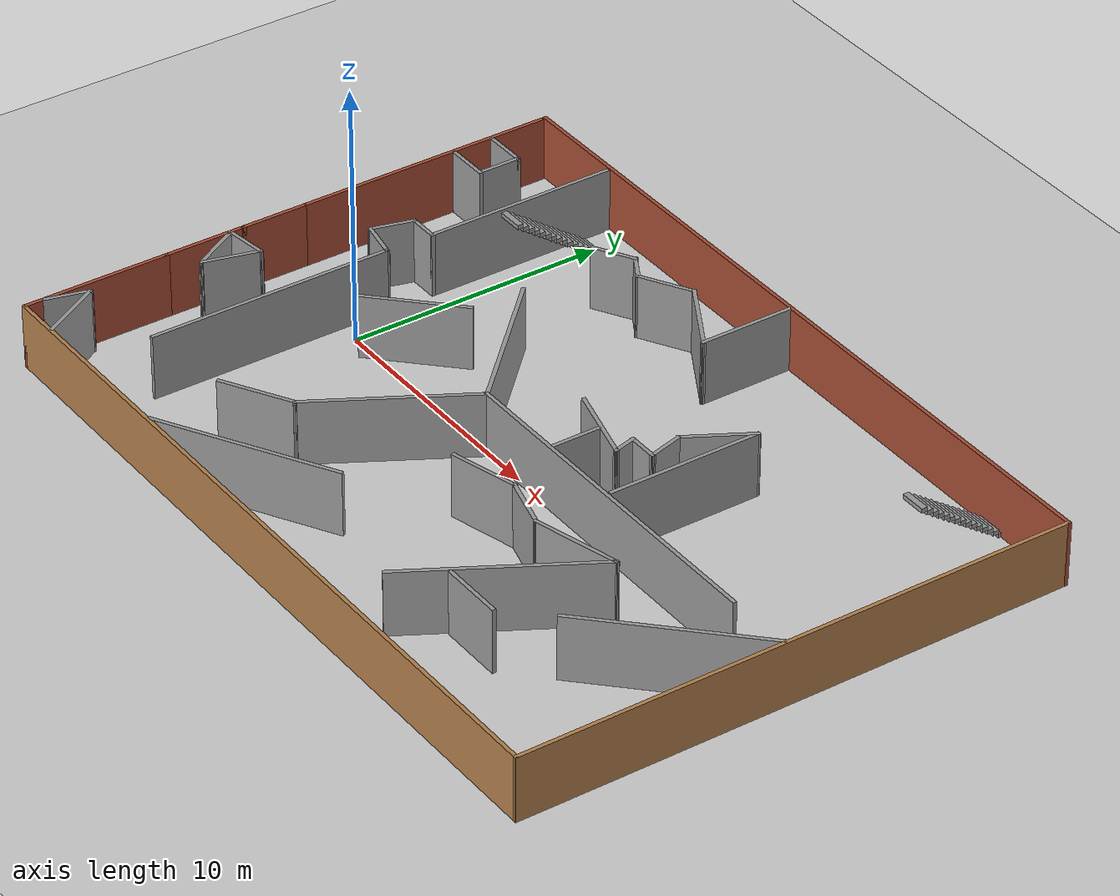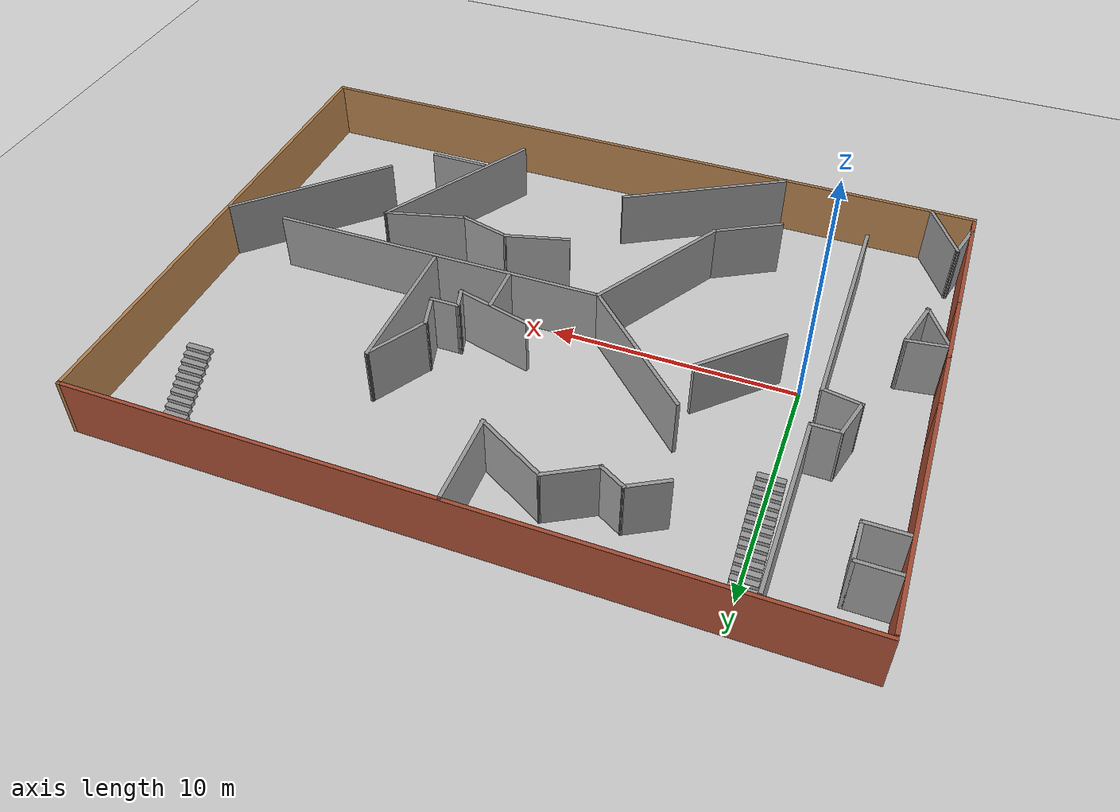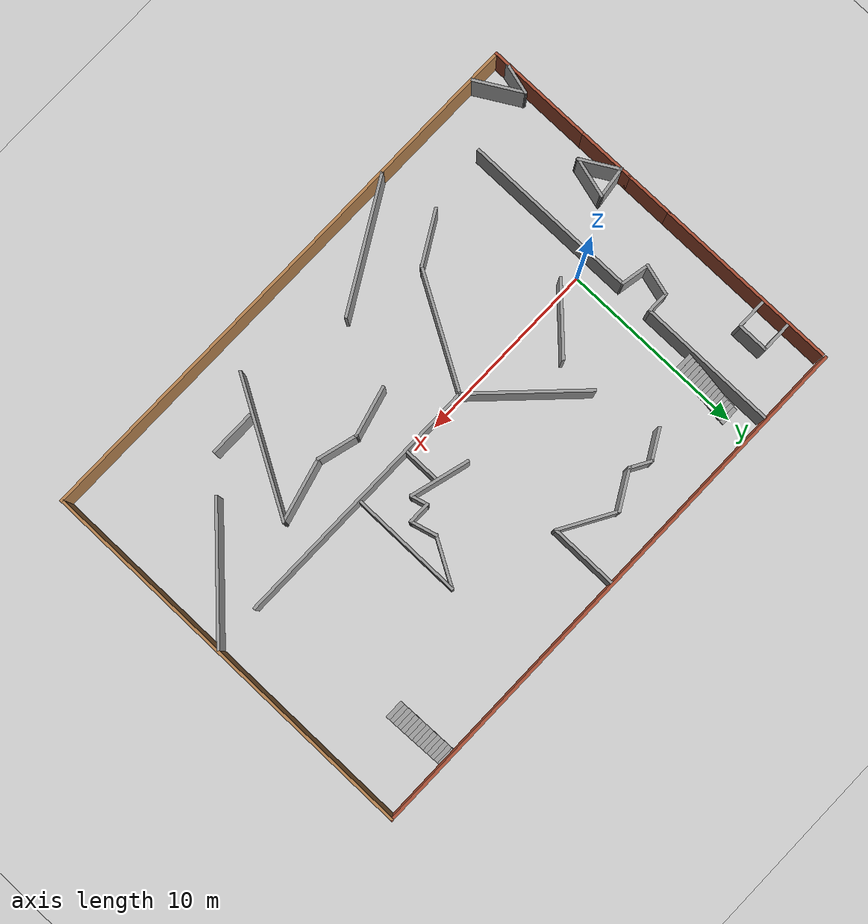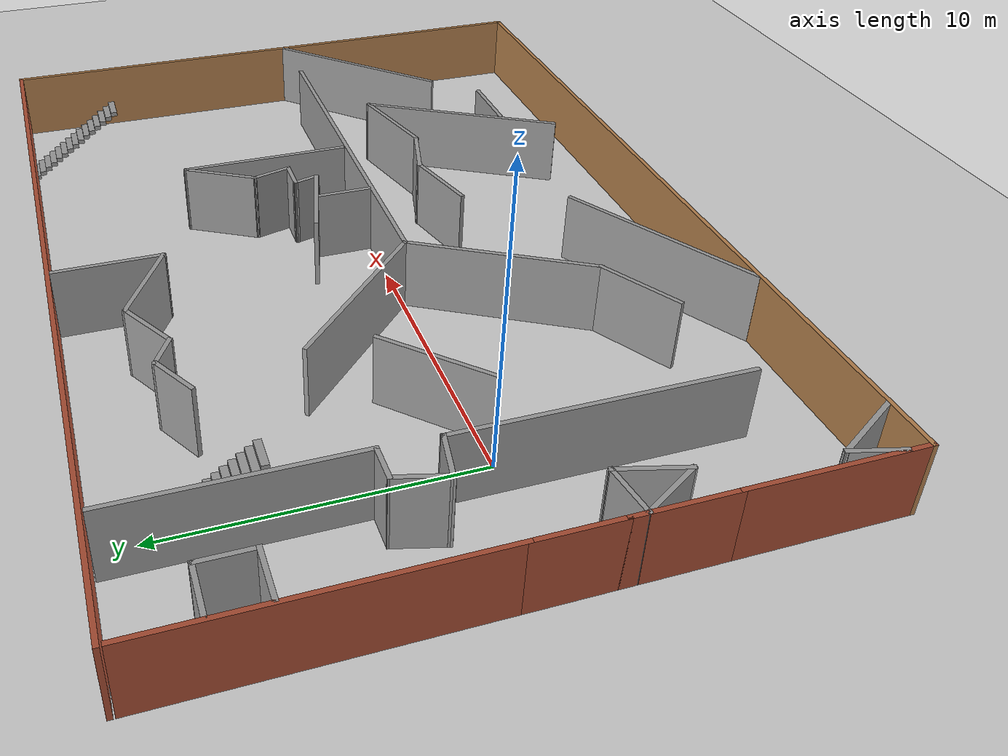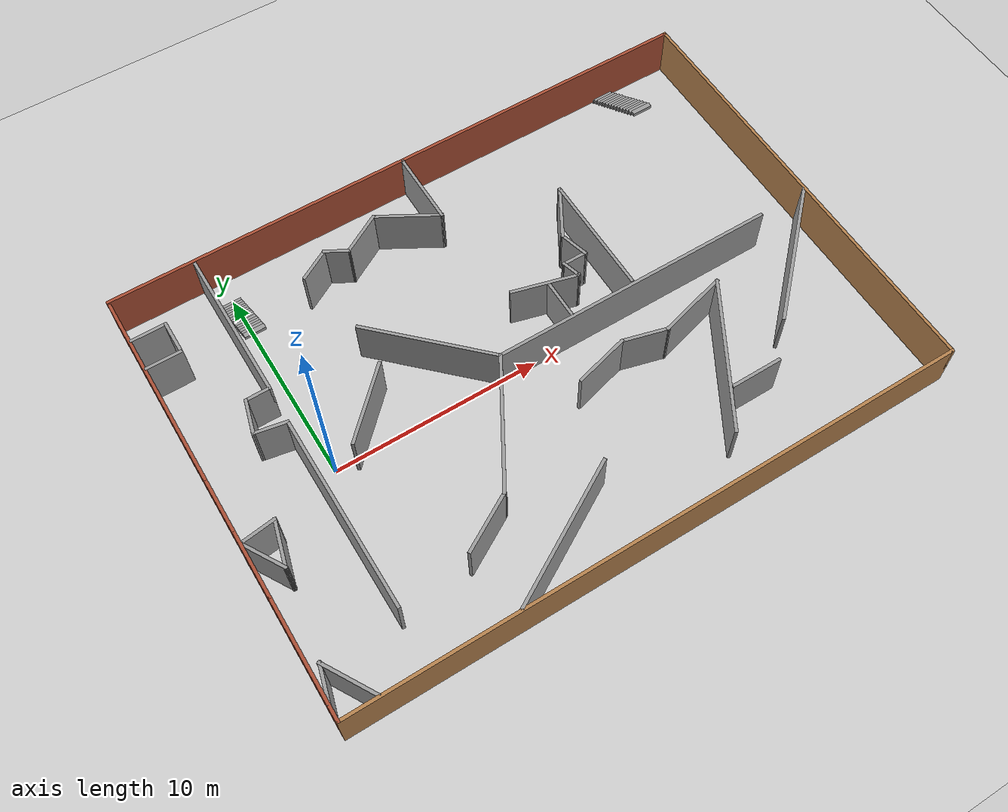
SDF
<sdf version="1.6">
 <world name="default">
  <light name="sun" type="directional">
   <pose>0 0 10 0 -0 0</pose>
   <diffuse>0.8 0.8 0.8 1</diffuse>
   <specular>0.2 0.2 0.2 1</specular>
   <attenuation>
    <range>1000</range>
    <constant>0.9</constant>
    <linear>0.01</linear>
    <quadratic>0.001</quadratic>
   </attenuation>
   <direction>-0.5 0.1 -0.9</direction>
   <spot><inner_angle>0</inner_angle><outer_angle>0</outer_angle><falloff>0</falloff></spot>
  </light>
  <model name="ground_plane">
   <static>1</static>
   <link name="link">
    <collision name="collision">
     <geometry><plane><normal>0 0 1</normal><size>100 100</size></plane></geometry>
     <surface>
      <contact><collide_bitmask>65535</collide_bitmask></contact>
      <friction><ode><mu>100</mu><mu2>50</mu2></ode></friction>
     </surface>
    </collision>
    <visual name="visual">
     <cast_shadows>0</cast_shadows>
     <geometry><plane><normal>0 0 1</normal><size>100 100</size></plane></geometry>
     <material>
      <script><uri>file://media/materials/scripts/gazebo.material</uri><name>Gazebo/Grey</name></script>
     </material>
    </visual>
   </link>
  </model>
  <gravity>0 0 -9.8</gravity>
  <magnetic_field>6e-06 2.3e-05 -4.2e-05</magnetic_field>
  <atmosphere type="adiabatic"/>
  <physics type="ode">
   <max_step_size>0.001</max_step_size>
   <real_time_factor>1</real_time_factor>
   <real_time_update_rate>1000</real_time_update_rate>
  </physics>
  <scene><ambient>0.4 0.4 0.4 1</ambient><background>0.7 0.7 0.7 1</background><shadows>1</shadows></scene>
  <spherical_coordinates>
   <surface_model>EARTH_WGS84</surface_model>
   <latitude_deg>0</latitude_deg>
   <longitude_deg>0</longitude_deg>
   <elevation>0</elevation>
   <heading_deg>0</heading_deg>
  </spherical_coordinates>
  <model name="demo">
   <pose>9.877 0.597931 0 0 -0 0</pose>
   <link name="Stairs_0">
    <visual name="Stairs_0_Visual_0">
     <pose>11.1017 10.6143 0.083333 0 -0 0</pose>
     <geometry><box><size>1 0.233333 0.166667</size></box></geometry>
     <material>
      <script><uri>file://media/materials/scripts/gazebo.material</uri><name>Gazebo/Grey</name></script>
      <ambient>1 1 1 1</ambient>
     </material>
     <meta><layer>0</layer></meta>
    </visual>
    <collision name="Stairs_0_Collision_0">
     <geometry><box><size>1 0.233333 0.166667</size></box></geometry>
     <pose>11.1017 10.6143 0.083333 0 -0 0</pose>
    </collision>
    <visual name="Stairs_0_Visual_1">
     <pose>11.1017 10.381 0.25 0 -0 0</pose>
     <geometry><box><size>1 0.233333 0.166667</size></box></geometry>
     <material>
      <script><uri>file://media/materials/scripts/gazebo.material</uri><name>Gazebo/Grey</name></script>
      <ambient>1 1 1 1</ambient>
     </material>
     <meta><layer>0</layer></meta>
    </visual>
    <collision name="Stairs_0_Collision_1">
     <geometry><box><size>1 0.233333 0.166667</size></box></geometry>
     <pose>11.1017 10.381 0.25 0 -0 0</pose>
    </collision>
    <visual name="Stairs_0_Visual_2">
     <pose>11.1017 10.1476 0.416667 0 -0 0</pose>
     <geometry><box><size>1 0.233333 0.166667</size></box></geometry>
     <material>
      <script><uri>file://media/materials/scripts/gazebo.material</uri><name>Gazebo/Grey</name></script>
      <ambient>1 1 1 1</ambient>
     </material>
     <meta><layer>0</layer></meta>
    </visual>
    <collision name="Stairs_0_Collision_2">
     <geometry><box><size>1 0.233333 0.166667</size></box></geometry>
     <pose>11.1017 10.1476 0.416667 0 -0 0</pose>
    </collision>
    <visual name="Stairs_0_Visual_3">
     <pose>11.1017 9.91429 0.583333 0 -0 0</pose>
     <geometry><box><size>1 0.233333 0.166667</size></box></geometry>
     <material>
      <script><uri>file://media/materials/scripts/gazebo.material</uri><name>Gazebo/Grey</name></script>
      <ambient>1 1 1 1</ambient>
     </material>
     <meta><layer>0</layer></meta>
    </visual>
    <collision name="Stairs_0_Collision_3">
     <geometry><box><size>1 0.233333 0.166667</size></box></geometry>
     <pose>11.1017 9.91429 0.583333 0 -0 0</pose>
    </collision>
    <visual name="Stairs_0_Visual_4">
     <pose>11.1017 9.68095 0.75 0 -0 0</pose>
     <geometry><box><size>1 0.233333 0.166667</size></box></geometry>
     <material>
      <script><uri>file://media/materials/scripts/gazebo.material</uri><name>Gazebo/Grey</name></script>
      <ambient>1 1 1 1</ambient>
     </material>
     <meta><layer>0</layer></meta>
    </visual>
    <collision name="Stairs_0_Collision_4">
     <geometry><box><size>1 0.233333 0.166667</size></box></geometry>
     <pose>11.1017 9.68095 0.75 0 -0 0</pose>
    </collision>
    <visual name="Stairs_0_Visual_5">
     <pose>11.1017 9.44762 0.916667 0 -0 0</pose>
     <geometry><box><size>1 0.233333 0.166667</size></box></geometry>
     <material>
      <script><uri>file://media/materials/scripts/gazebo.material</uri><name>Gazebo/Grey</name></script>
      <ambient>1 1 1 1</ambient>
     </material>
     <meta><layer>0</layer></meta>
    </visual>
    <collision name="Stairs_0_Collision_5">
     <geometry><box><size>1 0.233333 0.166667</size></box></geometry>
     <pose>11.1017 9.44762 0.916667 0 -0 0</pose>
    </collision>
    <visual name="Stairs_0_Visual_6">
     <pose>11.1017 9.21429 1.08333 0 -0 0</pose>
     <geometry><box><size>1 0.233333 0.166667</size></box></geometry>
     <material>
      <script><uri>file://media/materials/scripts/gazebo.material</uri><name>Gazebo/Grey</name></script>
      <ambient>1 1 1 1</ambient>
     </material>
     <meta><layer>0</layer></meta>
    </visual>
    <collision name="Stairs_0_Collision_6">
     <geometry><box><size>1 0.233333 0.166667</size></box></geometry>
     <pose>11.1017 9.21429 1.08333 0 -0 0</pose>
    </collision>
    <visual name="Stairs_0_Visual_7">
     <pose>11.1017 8.98095 1.25 0 -0 0</pose>
     <geometry><box><size>1 0.233333 0.166667</size></box></geometry>
     <material>
      <script><uri>file://media/materials/scripts/gazebo.material</uri><name>Gazebo/Grey</name></script>
      <ambient>1 1 1 1</ambient>
     </material>
     <meta><layer>0</layer></meta>
    </visual>
    <collision name="Stairs_0_Collision_7">
     <geometry><box><size>1 0.233333 0.166667</size></box></geometry>
     <pose>11.1017 8.98095 1.25 0 -0 0</pose>
    </collision>
    <visual name="Stairs_0_Visual_8">
     <pose>11.1017 8.74762 1.41667 0 -0 0</pose>
     <geometry><box><size>1 0.233333 0.166667</size></box></geometry>
     <material>
      <script><uri>file://media/materials/scripts/gazebo.material</uri><name>Gazebo/Grey</name></script>
      <ambient>1 1 1 1</ambient>
     </material>
     <meta><layer>0</layer></meta>
    </visual>
    <collision name="Stairs_0_Collision_8">
     <geometry><box><size>1 0.233333 0.166667</size></box></geometry>
     <pose>11.1017 8.74762 1.41667 0 -0 0</pose>
    </collision>
    <visual name="Stairs_0_Visual_9">
     <pose>11.1017 8.51429 1.58333 0 -0 0</pose>
     <geometry><box><size>1 0.233333 0.166667</size></box></geometry>
     <material>
      <script><uri>file://media/materials/scripts/gazebo.material</uri><name>Gazebo/Grey</name></script>
      <ambient>1 1 1 1</ambient>
     </material>
     <meta><layer>0</layer></meta>
    </visual>
    <collision name="Stairs_0_Collision_9">
     <geometry><box><size>1 0.233333 0.166667</size></box></geometry>
     <pose>11.1017 8.51429 1.58333 0 -0 0</pose>
    </collision>
    <visual name="Stairs_0_Visual_10">
     <pose>11.1017 8.28095 1.75 0 -0 0</pose>
     <geometry><box><size>1 0.233333 0.166667</size></box></geometry>
     <material>
      <script><uri>file://media/materials/scripts/gazebo.material</uri><name>Gazebo/Grey</name></script>
      <ambient>1 1 1 1</ambient>
     </material>
     <meta><layer>0</layer></meta>
    </visual>
    <collision name="Stairs_0_Collision_10">
     <geometry><box><size>1 0.233333 0.166667</size></box></geometry>
     <pose>11.1017 8.28095 1.75 0 -0 0</pose>
    </collision>
    <visual name="Stairs_0_Visual_11">
     <pose>11.1017 8.04762 1.91667 0 -0 0</pose>
     <geometry><box><size>1 0.233333 0.166667</size></box></geometry>
     <material>
      <script><uri>file://media/materials/scripts/gazebo.material</uri><name>Gazebo/Grey</name></script>
      <ambient>1 1 1 1</ambient>
     </material>
     <meta><layer>0</layer></meta>
    </visual>
    <collision name="Stairs_0_Collision_11">
     <geometry><box><size>1 0.233333 0.166667</size></box></geometry>
     <pose>11.1017 8.04762 1.91667 0 -0 0</pose>
    </collision>
    <visual name="Stairs_0_Visual_12">
     <pose>11.1017 7.81429 2.08333 0 -0 0</pose>
     <geometry><box><size>1 0.233333 0.166667</size></box></geometry>
     <material>
      <script><uri>file://media/materials/scripts/gazebo.material</uri><name>Gazebo/Grey</name></script>
      <ambient>1 1 1 1</ambient>
     </material>
     <meta><layer>0</layer></meta>
    </visual>
    <collision name="Stairs_0_Collision_12">
     <geometry><box><size>1 0.233333 0.166667</size></box></geometry>
     <pose>11.1017 7.81429 2.08333 0 -0 0</pose>
    </collision>
    <visual name="Stairs_0_Visual_13">
     <pose>11.1017 7.58095 2.25 0 -0 0</pose>
     <geometry><box><size>1 0.233333 0.166667</size></box></geometry>
     <material>
      <script><uri>file://media/materials/scripts/gazebo.material</uri><name>Gazebo/Grey</name></script>
      <ambient>1 1 1 1</ambient>
     </material>
     <meta><layer>0</layer></meta>
    </visual>
    <collision name="Stairs_0_Collision_13">
     <geometry><box><size>1 0.233333 0.166667</size></box></geometry>
     <pose>11.1017 7.58095 2.25 0 -0 0</pose>
    </collision>
    <visual name="Stairs_0_Visual_14">
     <pose>11.1017 7.34762 2.41667 0 -0 0</pose>
     <geometry><box><size>1 0.233333 0.166667</size></box></geometry>
     <material>
      <script><uri>file://media/materials/scripts/gazebo.material</uri><name>Gazebo/Grey</name></script>
      <ambient>1 1 1 1</ambient>
     </material>
     <meta><layer>0</layer></meta>
    </visual>
    <collision name="Stairs_0_Collision_14">
     <geometry><box><size>1 0.233333 0.166667</size></box></geometry>
     <pose>11.1017 7.34762 2.41667 0 -0 0</pose>
    </collision>
   </link>
   <link name="Stairs_1">
    <visual name="Stairs_1_Visual_0">
     <pose>-10.0119 9.27289 0.083333 0 -0 0</pose>
     <geometry><box><size>1 0.233333 0.166667</size></box></geometry>
     <material>
      <script><uri>file://media/materials/scripts/gazebo.material</uri><name>Gazebo/Grey</name></script>
      <ambient>1 1 1 1</ambient>
     </material>
     <meta><layer>0</layer></meta>
    </visual>
    <collision name="Stairs_1_Collision_0">
     <geometry><box><size>1 0.233333 0.166667</size></box></geometry>
     <pose>-10.0119 9.27289 0.083333 0 -0 0</pose>
    </collision>
    <visual name="Stairs_1_Visual_1">
     <pose>-10.0119 9.03956 0.25 0 -0 0</pose>
     <geometry><box><size>1 0.233333 0.166667</size></box></geometry>
     <material>
      <script><uri>file://media/materials/scripts/gazebo.material</uri><name>Gazebo/Grey</name></script>
      <ambient>1 1 1 1</ambient>
     </material>
     <meta><layer>0</layer></meta>
    </visual>
    <collision name="Stairs_1_Collision_1">
     <geometry><box><size>1 0.233333 0.166667</size></box></geometry>
     <pose>-10.0119 9.03956 0.25 0 -0 0</pose>
    </collision>
    <visual name="Stairs_1_Visual_2">
     <pose>-10.0119 8.80623 0.416667 0 -0 0</pose>
     <geometry><box><size>1 0.233333 0.166667</size></box></geometry>
     <material>
      <script><uri>file://media/materials/scripts/gazebo.material</uri><name>Gazebo/Grey</name></script>
      <ambient>1 1 1 1</ambient>
     </material>
     <meta><layer>0</layer></meta>
    </visual>
    <collision name="Stairs_1_Collision_2">
     <geometry><box><size>1 0.233333 0.166667</size></box></geometry>
     <pose>-10.0119 8.80623 0.416667 0 -0 0</pose>
    </collision>
    <visual name="Stairs_1_Visual_3">
     <pose>-10.0119 8.57289 0.583333 0 -0 0</pose>
     <geometry><box><size>1 0.233333 0.166667</size></box></geometry>
     <material>
      <script><uri>file://media/materials/scripts/gazebo.material</uri><name>Gazebo/Grey</name></script>
      <ambient>1 1 1 1</ambient>
     </material>
     <meta><layer>0</layer></meta>
    </visual>
    <collision name="Stairs_1_Collision_3">
     <geometry><box><size>1 0.233333 0.166667</size></box></geometry>
     <pose>-10.0119 8.57289 0.583333 0 -0 0</pose>
    </collision>
    <visual name="Stairs_1_Visual_4">
     <pose>-10.0119 8.33956 0.75 0 -0 0</pose>
     <geometry><box><size>1 0.233333 0.166667</size></box></geometry>
     <material>
      <script><uri>file://media/materials/scripts/gazebo.material</uri><name>Gazebo/Grey</name></script>
      <ambient>1 1 1 1</ambient>
     </material>
     <meta><layer>0</layer></meta>
    </visual>
    <collision name="Stairs_1_Collision_4">
     <geometry><box><size>1 0.233333 0.166667</size></box></geometry>
     <pose>-10.0119 8.33956 0.75 0 -0 0</pose>
    </collision>
    <visual name="Stairs_1_Visual_5">
     <pose>-10.0119 8.10623 0.916667 0 -0 0</pose>
     <geometry><box><size>1 0.233333 0.166667</size></box></geometry>
     <material>
      <script><uri>file://media/materials/scripts/gazebo.material</uri><name>Gazebo/Grey</name></script>
      <ambient>1 1 1 1</ambient>
     </material>
     <meta><layer>0</layer></meta>
    </visual>
    <collision name="Stairs_1_Collision_5">
     <geometry><box><size>1 0.233333 0.166667</size></box></geometry>
     <pose>-10.0119 8.10623 0.916667 0 -0 0</pose>
    </collision>
    <visual name="Stairs_1_Visual_6">
     <pose>-10.0119 7.87289 1.08333 0 -0 0</pose>
     <geometry><box><size>1 0.233333 0.166667</size></box></geometry>
     <material>
      <script><uri>file://media/materials/scripts/gazebo.material</uri><name>Gazebo/Grey</name></script>
      <ambient>1 1 1 1</ambient>
     </material>
     <meta><layer>0</layer></meta>
    </visual>
    <collision name="Stairs_1_Collision_6">
     <geometry><box><size>1 0.233333 0.166667</size></box></geometry>
     <pose>-10.0119 7.87289 1.08333 0 -0 0</pose>
    </collision>
    <visual name="Stairs_1_Visual_7">
     <pose>-10.0119 7.63956 1.25 0 -0 0</pose>
     <geometry><box><size>1 0.233333 0.166667</size></box></geometry>
     <material>
      <script><uri>file://media/materials/scripts/gazebo.material</uri><name>Gazebo/Grey</name></script>
      <ambient>1 1 1 1</ambient>
     </material>
     <meta><layer>0</layer></meta>
    </visual>
    <collision name="Stairs_1_Collision_7">
     <geometry><box><size>1 0.233333 0.166667</size></box></geometry>
     <pose>-10.0119 7.63956 1.25 0 -0 0</pose>
    </collision>
    <visual name="Stairs_1_Visual_8">
     <pose>-10.0119 7.40623 1.41667 0 -0 0</pose>
     <geometry><box><size>1 0.233333 0.166667</size></box></geometry>
     <material>
      <script><uri>file://media/materials/scripts/gazebo.material</uri><name>Gazebo/Grey</name></script>
      <ambient>1 1 1 1</ambient>
     </material>
     <meta><layer>0</layer></meta>
    </visual>
    <collision name="Stairs_1_Collision_8">
     <geometry><box><size>1 0.233333 0.166667</size></box></geometry>
     <pose>-10.0119 7.40623 1.41667 0 -0 0</pose>
    </collision>
    <visual name="Stairs_1_Visual_9">
     <pose>-10.0119 7.17289 1.58333 0 -0 0</pose>
     <geometry><box><size>1 0.233333 0.166667</size></box></geometry>
     <material>
      <script><uri>file://media/materials/scripts/gazebo.material</uri><name>Gazebo/Grey</name></script>
      <ambient>1 1 1 1</ambient>
     </material>
     <meta><layer>0</layer></meta>
    </visual>
    <collision name="Stairs_1_Collision_9">
     <geometry><box><size>1 0.233333 0.166667</size></box></geometry>
     <pose>-10.0119 7.17289 1.58333 0 -0 0</pose>
    </collision>
    <visual name="Stairs_1_Visual_10">
     <pose>-10.0119 6.93956 1.75 0 -0 0</pose>
     <geometry><box><size>1 0.233333 0.166667</size></box></geometry>
     <material>
      <script><uri>file://media/materials/scripts/gazebo.material</uri><name>Gazebo/Grey</name></script>
      <ambient>1 1 1 1</ambient>
     </material>
     <meta><layer>0</layer></meta>
    </visual>
    <collision name="Stairs_1_Collision_10">
     <geometry><box><size>1 0.233333 0.166667</size></box></geometry>
     <pose>-10.0119 6.93956 1.75 0 -0 0</pose>
    </collision>
    <visual name="Stairs_1_Visual_11">
     <pose>-10.0119 6.70623 1.91667 0 -0 0</pose>
     <geometry><box><size>1 0.233333 0.166667</size></box></geometry>
     <material>
      <script><uri>file://media/materials/scripts/gazebo.material</uri><name>Gazebo/Grey</name></script>
      <ambient>1 1 1 1</ambient>
     </material>
     <meta><layer>0</layer></meta>
    </visual>
    <collision name="Stairs_1_Collision_11">
     <geometry><box><size>1 0.233333 0.166667</size></box></geometry>
     <pose>-10.0119 6.70623 1.91667 0 -0 0</pose>
    </collision>
    <visual name="Stairs_1_Visual_12">
     <pose>-10.0119 6.47289 2.08333 0 -0 0</pose>
     <geometry><box><size>1 0.233333 0.166667</size></box></geometry>
     <material>
      <script><uri>file://media/materials/scripts/gazebo.material</uri><name>Gazebo/Grey</name></script>
      <ambient>1 1 1 1</ambient>
     </material>
     <meta><layer>0</layer></meta>
    </visual>
    <collision name="Stairs_1_Collision_12">
     <geometry><box><size>1 0.233333 0.166667</size></box></geometry>
     <pose>-10.0119 6.47289 2.08333 0 -0 0</pose>
    </collision>
    <visual name="Stairs_1_Visual_13">
     <pose>-10.0119 6.23956 2.25 0 -0 0</pose>
     <geometry><box><size>1 0.233333 0.166667</size></box></geometry>
     <material>
      <script><uri>file://media/materials/scripts/gazebo.material</uri><name>Gazebo/Grey</name></script>
      <ambient>1 1 1 1</ambient>
     </material>
     <meta><layer>0</layer></meta>
    </visual>
    <collision name="Stairs_1_Collision_13">
     <geometry><box><size>1 0.233333 0.166667</size></box></geometry>
     <pose>-10.0119 6.23956 2.25 0 -0 0</pose>
    </collision>
    <visual name="Stairs_1_Visual_14">
     <pose>-10.0119 6.00623 2.41667 0 -0 0</pose>
     <geometry><box><size>1 0.233333 0.166667</size></box></geometry>
     <material>
      <script><uri>file://media/materials/scripts/gazebo.material</uri><name>Gazebo/Grey</name></script>
      <ambient>1 1 1 1</ambient>
     </material>
     <meta><layer>0</layer></meta>
    </visual>
    <collision name="Stairs_1_Collision_14">
     <geometry><box><size>1 0.233333 0.166667</size></box></geometry>
     <pose>-10.0119 6.00623 2.41667 0 -0 0</pose>
    </collision>
   </link>
   <link name="Wall_0">
    <collision name="Wall_0_Collision">
     <geometry><box><size>3.25 0.15 2.5</size></box></geometry>
     <pose>0 0 1.25 0 -0 0</pose>
    </collision>
    <visual name="Wall_0_Visual">
     <pose>0 0 1.25 0 -0 0</pose>
     <geometry><box><size>3.25 0.15 2.5</size></box></geometry>
     <material>
      <script><uri>file://media/materials/scripts/gazebo.material</uri><name>Gazebo/Bricks</name></script>
      <ambient>1 1 1 1</ambient>
     </material>
     <meta><layer>0</layer></meta>
    </visual>
    <pose>-14.7939 -3.525 0 0 -0 -1.5708</pose>
   </link>
   <link name="Wall_10">
    <collision name="Wall_10_Collision">
     <geometry><box><size>29.75 0.15 2.5</size></box></geometry>
     <pose>0 0 1.25 0 -0 0</pose>
    </collision>
    <visual name="Wall_10_Visual">
     <pose>0 0 1.25 0 -0 0</pose>
     <geometry><box><size>29.75 0.15 2.5</size></box></geometry>
     <material>
      <script><uri>file://media/materials/scripts/gazebo.material</uri><name>Gazebo/Bricks</name></script>
      <ambient>1 1 1 1</ambient>
     </material>
     <meta><layer>0</layer></meta>
    </visual>
    <pose>0.006073 10.675 0 0 -0 3.14159</pose>
   </link>
   <link name="Wall_12">
    <collision name="Wall_12_Collision">
     <geometry><box><size>7.5 0.15 2.5</size></box></geometry>
     <pose>0 0 1.25 0 -0 0</pose>
    </collision>
    <visual name="Wall_12_Visual">
     <pose>0 0 1.25 0 -0 0</pose>
     <geometry><box><size>7.5 0.15 2.5</size></box></geometry>
     <material>
      <script><uri>file://media/materials/scripts/gazebo.material</uri><name>Gazebo/Grey</name></script>
      <ambient>1 1 1 1</ambient>
     </material>
     <meta><layer>0</layer></meta>
    </visual>
    <pose>-10.7178 6.81263 0 0 -0 -1.5708</pose>
   </link>
   <link name="Wall_19">
    <collision name="Wall_19_Collision">
     <geometry><box><size>6.5 0.15 2.5</size></box></geometry>
     <pose>0 0 1.25 0 -0 0</pose>
    </collision>
    <visual name="Wall_19_Visual">
     <pose>0 0 1.25 0 -0 0</pose>
     <geometry><box><size>6.5 0.15 2.5</size></box></geometry>
     <material>
      <script><uri>file://media/materials/scripts/gazebo.material</uri><name>Gazebo/Grey</name></script>
      <ambient>1 1 1 1</ambient>
     </material>
     <meta><layer>0</layer></meta>
    </visual>
    <pose>-3.25558 -3.40143 0 0 -0 1.0472</pose>
   </link>
   <link name="Wall_2">
    <collision name="Wall_2_Collision">
     <geometry><box><size>2.75 0.15 2.5</size></box></geometry>
     <pose>0 0 1.25 0 -0 0</pose>
    </collision>
    <visual name="Wall_2_Visual">
     <pose>0 0 1.25 0 -0 0</pose>
     <geometry><box><size>2.75 0.15 2.5</size></box></geometry>
     <material>
      <script><uri>file://media/materials/scripts/gazebo.material</uri><name>Gazebo/Bricks</name></script>
      <ambient>1 1 1 1</ambient>
     </material>
     <meta><layer>0</layer></meta>
    </visual>
    <pose>-14.7939 -0.675 0 0 -0 1.5708</pose>
   </link>
   <link name="Wall_20">
    <collision name="Wall_20_Collision">
     <geometry><box><size>6.5 0.15 2.5</size></box></geometry>
     <pose>0 0 1.25 0 -0 0</pose>
    </collision>
    <visual name="Wall_20_Visual">
     <pose>0 0 1.25 0 -0 0</pose>
     <geometry><box><size>6.5 0.15 2.5</size></box></geometry>
     <material>
      <script><uri>file://media/materials/scripts/gazebo.material</uri><name>Gazebo/Grey</name></script>
      <ambient>1 1 1 1</ambient>
     </material>
     <meta><layer>0</layer></meta>
    </visual>
    <pose>-3.91314 1.59326 0 0 -0 2.35619</pose>
   </link>
   <link name="Wall_27">
    <collision name="Wall_27_Collision">
     <geometry><box><size>4 0.15 2.5</size></box></geometry>
     <pose>0 0 1.25 0 -0 0</pose>
    </collision>
    <visual name="Wall_27_Visual">
     <pose>0 0 1.25 0 -0 0</pose>
     <geometry><box><size>4 0.15 2.5</size></box></geometry>
     <material>
      <script><uri>file://media/materials/scripts/gazebo.material</uri><name>Gazebo/Grey</name></script>
      <ambient>1 1 1 1</ambient>
     </material>
     <meta><layer>0</layer></meta>
    </visual>
    <pose>-7.58743 0.389492 0 0 -0 -2.35619</pose>
   </link>
   <link name="Wall_29">
    <collision name="Wall_29_Collision">
     <geometry><box><size>14 0.15 2.5</size></box></geometry>
     <pose>0 0 1.25 0 -0 0</pose>
    </collision>
    <visual name="Wall_29_Visual">
     <pose>0 0 1.25 0 -0 0</pose>
     <geometry><box><size>14 0.15 2.5</size></box></geometry>
     <material>
      <script><uri>file://media/materials/scripts/gazebo.material</uri><name>Gazebo/Grey</name></script>
      <ambient>1 1 1 1</ambient>
     </material>
     <meta><layer>0</layer></meta>
    </visual>
    <pose>5.25692 -0.651799 0 0 -0 0</pose>
   </link>
   <link name="Wall_32">
    <collision name="Wall_32_Collision">
     <geometry><box><size>7.25 0.15 2.5</size></box></geometry>
     <pose>0 0 1.25 0 -0 0</pose>
    </collision>
    <visual name="Wall_32_Visual">
     <pose>0 0 1.25 0 -0 0</pose>
     <geometry><box><size>7.25 0.15 2.5</size></box></geometry>
     <material>
      <script><uri>file://media/materials/scripts/gazebo.material</uri><name>Gazebo/Grey</name></script>
      <ambient>1 1 1 1</ambient>
     </material>
     <meta><layer>0</layer></meta>
    </visual>
    <pose>-3.70561 -8.84143 0 0 -0 0.523599</pose>
   </link>
   <link name="Wall_34">
    <collision name="Wall_34_Collision">
     <geometry><box><size>2.75 0.15 2.5</size></box></geometry>
     <pose>0 0 1.25 0 -0 0</pose>
    </collision>
    <visual name="Wall_34_Visual">
     <pose>0 0 1.25 0 -0 0</pose>
     <geometry><box><size>2.75 0.15 2.5</size></box></geometry>
     <material>
      <script><uri>file://media/materials/scripts/gazebo.material</uri><name>Gazebo/Grey</name></script>
      <ambient>1 1 1 1</ambient>
     </material>
     <meta><layer>0</layer></meta>
    </visual>
    <pose>1.85905 -3.14273 0 0 -0 0.261799</pose>
   </link>
   <link name="Wall_35">
    <collision name="Wall_35_Collision">
     <geometry><box><size>2.25 0.15 2.5</size></box></geometry>
     <pose>0 0 1.25 0 -0 0</pose>
    </collision>
    <visual name="Wall_35_Visual">
     <pose>0 0 1.25 0 -0 0</pose>
     <geometry><box><size>2.25 0.15 2.5</size></box></geometry>
     <material>
      <script><uri>file://media/materials/scripts/gazebo.material</uri><name>Gazebo/Grey</name></script>
      <ambient>1 1 1 1</ambient>
     </material>
     <meta><layer>0</layer></meta>
    </visual>
    <pose>4.12898 -3.07803 0 0 -0 -0.261799</pose>
   </link>
   <link name="Wall_36">
    <collision name="Wall_36_Collision">
     <geometry><box><size>3.5 0.15 2.5</size></box></geometry>
     <pose>0 0 1.25 0 -0 0</pose>
    </collision>
    <visual name="Wall_36_Visual">
     <pose>0 0 1.25 0 -0 0</pose>
     <geometry><box><size>3.5 0.15 2.5</size></box></geometry>
     <material>
      <script><uri>file://media/materials/scripts/gazebo.material</uri><name>Gazebo/Grey</name></script>
      <ambient>1 1 1 1</ambient>
     </material>
     <meta><layer>0</layer></meta>
    </visual>
    <pose>6.76112 -2.91627 0 0 -0 0.261799</pose>
   </link>
   <link name="Wall_37">
    <collision name="Wall_37_Collision">
     <geometry><box><size>7.5 0.15 2.5</size></box></geometry>
     <pose>0 0 1.25 0 -0 0</pose>
    </collision>
    <visual name="Wall_37_Visual">
     <pose>0 0 1.25 0 -0 0</pose>
     <geometry><box><size>7.5 0.15 2.5</size></box></geometry>
     <material>
      <script><uri>file://media/materials/scripts/gazebo.material</uri><name>Gazebo/Grey</name></script>
      <ambient>1 1 1 1</ambient>
     </material>
     <meta><layer>0</layer></meta>
    </visual>
    <pose>6.54155 -5.66539 0 0 -0 -2.0944</pose>
   </link>
   <link name="Wall_4">
    <collision name="Wall_4_Collision">
     <geometry><box><size>5.75 0.15 2.5</size></box></geometry>
     <pose>0 0 1.25 0 -0 0</pose>
    </collision>
    <visual name="Wall_4_Visual">
     <pose>0 0 1.25 0 -0 0</pose>
     <geometry><box><size>5.75 0.15 2.5</size></box></geometry>
     <material>
      <script><uri>file://media/materials/scripts/gazebo.material</uri><name>Gazebo/Bricks</name></script>
      <ambient>1 1 1 1</ambient>
     </material>
     <meta><layer>0</layer></meta>
    </visual>
    <pose>-14.7939 -7.875 0 0 -0 -1.5708</pose>
   </link>
   <link name="Wall_41">
    <collision name="Wall_41_Collision">
     <geometry><box><size>7.25 0.15 2.5</size></box></geometry>
     <pose>0 0 1.25 0 -0 0</pose>
    </collision>
    <visual name="Wall_41_Visual">
     <pose>0 0 1.25 0 -0 0</pose>
     <geometry><box><size>7.25 0.15 2.5</size></box></geometry>
     <material>
      <script><uri>file://media/materials/scripts/gazebo.material</uri><name>Gazebo/Grey</name></script>
      <ambient>1 1 1 1</ambient>
     </material>
     <meta><layer>0</layer></meta>
    </visual>
    <pose>12.2197 -3.06092 0 0 -0 0.785398</pose>
   </link>
   <link name="Wall_43">
    <collision name="Wall_43_Collision">
     <geometry><box><size>2.5 0.15 2.5</size></box></geometry>
     <pose>0 0 1.25 0 -0 0</pose>
    </collision>
    <visual name="Wall_43_Visual">
     <pose>0 0 1.25 0 -0 0</pose>
     <geometry><box><size>2.5 0.15 2.5</size></box></geometry>
     <material>
      <script><uri>file://media/materials/scripts/gazebo.material</uri><name>Gazebo/Grey</name></script>
      <ambient>1 1 1 1</ambient>
     </material>
     <meta><layer>0</layer></meta>
    </visual>
    <pose>7.06974 -7.10934 0 0 -0 0</pose>
   </link>
   <link name="Wall_45">
    <collision name="Wall_45_Collision">
     <geometry><box><size>2 0.15 2.5</size></box></geometry>
     <pose>0 0 1.25 0 -0 0</pose>
    </collision>
    <visual name="Wall_45_Visual">
     <pose>0 0 1.25 0 -0 0</pose>
     <geometry><box><size>2 0.15 2.5</size></box></geometry>
     <material>
      <script><uri>file://media/materials/scripts/gazebo.material</uri><name>Gazebo/Grey</name></script>
      <ambient>1 1 1 1</ambient>
     </material>
     <meta><layer>0</layer></meta>
    </visual>
    <pose>2.01849 0.399141 0 0 -0 1.5708</pose>
   </link>
   <link name="Wall_47">
    <collision name="Wall_47_Collision">
     <geometry><box><size>6 0.15 2.5</size></box></geometry>
     <pose>0 0 1.25 0 -0 0</pose>
    </collision>
    <visual name="Wall_47_Visual">
     <pose>0 0 1.25 0 -0 0</pose>
     <geometry><box><size>6 0.15 2.5</size></box></geometry>
     <material>
      <script><uri>file://media/materials/scripts/gazebo.material</uri><name>Gazebo/Grey</name></script>
      <ambient>1 1 1 1</ambient>
     </material>
     <meta><layer>0</layer></meta>
    </visual>
    <pose>5.21794 2.46067 0 0 -0 1.5708</pose>
   </link>
   <link name="Wall_48">
    <collision name="Wall_48_Collision">
     <geometry><box><size>2.75 0.15 2.5</size></box></geometry>
     <pose>0 0 1.25 0 -0 0</pose>
    </collision>
    <visual name="Wall_48_Visual">
     <pose>0 0 1.25 0 -0 0</pose>
     <geometry><box><size>2.75 0.15 2.5</size></box></geometry>
     <material>
      <script><uri>file://media/materials/scripts/gazebo.material</uri><name>Gazebo/Grey</name></script>
      <ambient>1 1 1 1</ambient>
     </material>
     <meta><layer>0</layer></meta>
    </visual>
    <pose>4.56794 4.25984 0 0 -0 -2.0944</pose>
   </link>
   <link name="Wall_49">
    <collision name="Wall_49_Collision">
     <geometry><box><size>1.5 0.15 2.5</size></box></geometry>
     <pose>0 0 1.25 0 -0 0</pose>
    </collision>
    <visual name="Wall_49_Visual">
     <pose>0 0 1.25 0 -0 0</pose>
     <geometry><box><size>1.5 0.15 2.5</size></box></geometry>
     <material>
      <script><uri>file://media/materials/scripts/gazebo.material</uri><name>Gazebo/Grey</name></script>
      <ambient>1 1 1 1</ambient>
     </material>
     <meta><layer>0</layer></meta>
    </visual>
    <pose>4.09264 2.482 0 0 -0 -1.309</pose>
   </link>
   <link name="Wall_50">
    <collision name="Wall_50_Collision">
     <geometry><box><size>1.25 0.15 2.5</size></box></geometry>
     <pose>0 0 1.25 0 -0 0</pose>
    </collision>
    <visual name="Wall_50_Visual">
     <pose>0 0 1.25 0 -0 0</pose>
     <geometry><box><size>1.25 0.15 2.5</size></box></geometry>
     <material>
      <script><uri>file://media/materials/scripts/gazebo.material</uri><name>Gazebo/Grey</name></script>
      <ambient>1 1 1 1</ambient>
     </material>
     <meta><layer>0</layer></meta>
    </visual>
    <pose>3.71734 1.83 0 0 -0 3.14159</pose>
   </link>
   <link name="Wall_51">
    <collision name="Wall_51_Collision">
     <geometry><box><size>1 0.15 2.5</size></box></geometry>
     <pose>0 0 1.25 0 -0 0</pose>
    </collision>
    <visual name="Wall_51_Visual">
     <pose>0 0 1.25 0 -0 0</pose>
     <geometry><box><size>1 0.15 2.5</size></box></geometry>
     <material>
      <script><uri>file://media/materials/scripts/gazebo.material</uri><name>Gazebo/Grey</name></script>
      <ambient>1 1 1 1</ambient>
     </material>
     <meta><layer>0</layer></meta>
    </visual>
    <pose>3.27734 1.41948 0 0 -0 -1.309</pose>
   </link>
   <link name="Wall_52">
    <collision name="Wall_52_Collision">
     <geometry><box><size>3.25 0.15 2.5</size></box></geometry>
     <pose>0 0 1.25 0 -0 0</pose>
    </collision>
    <visual name="Wall_52_Visual">
     <pose>0 0 1.25 0 -0 0</pose>
     <geometry><box><size>3.25 0.15 2.5</size></box></geometry>
     <material>
      <script><uri>file://media/materials/scripts/gazebo.material</uri><name>Gazebo/Grey</name></script>
      <ambient>1 1 1 1</ambient>
     </material>
     <meta><layer>0</layer></meta>
    </visual>
    <pose>1.89016 1.41013 0 0 -0 2.87979</pose>
   </link>
   <link name="Wall_54">
    <collision name="Wall_54_Collision">
     <geometry><box><size>9.5 0.15 2.5</size></box></geometry>
     <pose>0 0 1.25 0 -0 0</pose>
    </collision>
    <visual name="Wall_54_Visual">
     <pose>0 0 1.25 0 -0 0</pose>
     <geometry><box><size>9.5 0.15 2.5</size></box></geometry>
     <material>
      <script><uri>file://media/materials/scripts/gazebo.material</uri><name>Gazebo/Grey</name></script>
      <ambient>1 1 1 1</ambient>
     </material>
     <meta><layer>0</layer></meta>
    </visual>
    <pose>-10.7793 -3.35502 0 0 -0 -1.5708</pose>
   </link>
   <link name="Wall_56">
    <collision name="Wall_56_Collision">
     <geometry><box><size>1.25 0.15 2.5</size></box></geometry>
     <pose>0 0 1.25 0 -0 0</pose>
    </collision>
    <visual name="Wall_56_Visual">
     <pose>0 0 1.25 0 -0 0</pose>
     <geometry><box><size>1.25 0.15 2.5</size></box></geometry>
     <material>
      <script><uri>file://media/materials/scripts/gazebo.material</uri><name>Gazebo/Grey</name></script>
      <ambient>1 1 1 1</ambient>
     </material>
     <meta><layer>0</layer></meta>
    </visual>
    <pose>-11.2678 3.13763 0 0 -0 3.14159</pose>
   </link>
   <link name="Wall_57">
    <collision name="Wall_57_Collision">
     <geometry><box><size>1.75 0.15 2.5</size></box></geometry>
     <pose>0 0 1.25 0 -0 0</pose>
    </collision>
    <visual name="Wall_57_Visual">
     <pose>0 0 1.25 0 -0 0</pose>
     <geometry><box><size>1.75 0.15 2.5</size></box></geometry>
     <material>
      <script><uri>file://media/materials/scripts/gazebo.material</uri><name>Gazebo/Grey</name></script>
      <ambient>1 1 1 1</ambient>
     </material>
     <meta><layer>0</layer></meta>
    </visual>
    <pose>-12.0248 2.36489 0 0 -0 -1.8326</pose>
   </link>
   <link name="Wall_58">
    <collision name="Wall_58_Collision">
     <geometry><box><size>1.62786 0.15 2.5</size></box></geometry>
     <pose>0 0 1.25 0 -0 0</pose>
    </collision>
    <visual name="Wall_58_Visual">
     <pose>0 0 1.25 0 -0 0</pose>
     <geometry><box><size>1.62786 0.15 2.5</size></box></geometry>
     <material>
      <script><uri>file://media/materials/scripts/gazebo.material</uri><name>Gazebo/Grey</name></script>
      <ambient>1 1 1 1</ambient>
     </material>
     <meta><layer>0</layer></meta>
    </visual>
    <pose>-11.5056 1.45606 0 0 -0 -0.185224</pose>
   </link>
   <link name="Wall_6">
    <collision name="Wall_6_Collision">
     <geometry><box><size>10 0.15 2.5</size></box></geometry>
     <pose>0 0 1.25 0 -0 0</pose>
    </collision>
    <visual name="Wall_6_Visual">
     <pose>0 0 1.25 0 -0 0</pose>
     <geometry><box><size>10 0.15 2.5</size></box></geometry>
     <material>
      <script><uri>file://media/materials/scripts/gazebo.material</uri><name>Gazebo/Bricks</name></script>
      <ambient>1 1 1 1</ambient>
     </material>
     <meta><layer>0</layer></meta>
    </visual>
    <pose>-14.7939 5.55 0 0 -0 1.5708</pose>
   </link>
   <link name="Wall_60">
    <collision name="Wall_60_Collision">
     <geometry><box><size>1.75 0.15 2.5</size></box></geometry>
     <pose>0 0 1.25 0 -0 0</pose>
    </collision>
    <visual name="Wall_60_Visual">
     <pose>0 0 1.25 0 -0 0</pose>
     <geometry><box><size>1.75 0.15 2.5</size></box></geometry>
     <material>
      <script><uri>file://media/materials/scripts/gazebo.material</uri><name>Gazebo/Grey</name></script>
      <ambient>1 1 1 1</ambient>
     </material>
     <meta><layer>0</layer></meta>
    </visual>
    <pose>-13.9171 8.33416 0 0 -0 0</pose>
   </link>
   <link name="Wall_61">
    <collision name="Wall_61_Collision">
     <geometry><box><size>1.75 0.15 2.5</size></box></geometry>
     <pose>0 0 1.25 0 -0 0</pose>
    </collision>
    <visual name="Wall_61_Visual">
     <pose>0 0 1.25 0 -0 0</pose>
     <geometry><box><size>1.75 0.15 2.5</size></box></geometry>
     <material>
      <script><uri>file://media/materials/scripts/gazebo.material</uri><name>Gazebo/Grey</name></script>
      <ambient>1 1 1 1</ambient>
     </material>
     <meta><layer>0</layer></meta>
    </visual>
    <pose>-13.1171 7.53416 0 0 -0 -1.5708</pose>
   </link>
   <link name="Wall_62">
    <collision name="Wall_62_Collision">
     <geometry><box><size>1.75 0.15 2.5</size></box></geometry>
     <pose>0 0 1.25 0 -0 0</pose>
    </collision>
    <visual name="Wall_62_Visual">
     <pose>0 0 1.25 0 -0 0</pose>
     <geometry><box><size>1.75 0.15 2.5</size></box></geometry>
     <material>
      <script><uri>file://media/materials/scripts/gazebo.material</uri><name>Gazebo/Grey</name></script>
      <ambient>1 1 1 1</ambient>
     </material>
     <meta><layer>0</layer></meta>
    </visual>
    <pose>-13.9171 6.73416 0 0 -0 3.14159</pose>
   </link>
   <link name="Wall_64">
    <collision name="Wall_64_Collision">
     <geometry><box><size>2.25 0.15 2.5</size></box></geometry>
     <pose>0 0 1.25 0 -0 0</pose>
    </collision>
    <visual name="Wall_64_Visual">
     <pose>0 0 1.25 0 -0 0</pose>
     <geometry><box><size>2.25 0.15 2.5</size></box></geometry>
     <material>
      <script><uri>file://media/materials/scripts/gazebo.material</uri><name>Gazebo/Grey</name></script>
      <ambient>1 1 1 1</ambient>
     </material>
     <meta><layer>0</layer></meta>
    </visual>
    <pose>-14.2536 -3.40408 0 0 -0 -1.0472</pose>
   </link>
   <link name="Wall_65">
    <collision name="Wall_65_Collision">
     <geometry><box><size>2.25 0.15 2.5</size></box></geometry>
     <pose>0 0 1.25 0 -0 0</pose>
    </collision>
    <visual name="Wall_65_Visual">
     <pose>0 0 1.25 0 -0 0</pose>
     <geometry><box><size>2.25 0.15 2.5</size></box></geometry>
     <material>
      <script><uri>file://media/materials/scripts/gazebo.material</uri><name>Gazebo/Grey</name></script>
      <ambient>1 1 1 1</ambient>
     </material>
     <meta><layer>0</layer></meta>
    </visual>
    <pose>-13.4569 -3.29918 0 0 -0 1.309</pose>
   </link>
   <link name="Wall_66">
    <collision name="Wall_66_Collision">
     <geometry><box><size>1.75727 0.15 2.5</size></box></geometry>
     <pose>0 0 1.25 0 -0 0</pose>
    </collision>
    <visual name="Wall_66_Visual">
     <pose>0 0 1.25 0 -0 0</pose>
     <geometry><box><size>1.75727 0.15 2.5</size></box></geometry>
     <material>
      <script><uri>file://media/materials/scripts/gazebo.material</uri><name>Gazebo/Grey</name></script>
      <ambient>1 1 1 1</ambient>
     </material>
     <meta><layer>0</layer></meta>
    </visual>
    <pose>-13.9819 -2.38986 0 0 -0 -3.01069</pose>
   </link>
   <link name="Wall_68">
    <collision name="Wall_68_Collision">
     <geometry><box><size>2.75 0.15 2.5</size></box></geometry>
     <pose>0 0 1.25 0 -0 0</pose>
    </collision>
    <visual name="Wall_68_Visual">
     <pose>0 0 1.25 0 -0 0</pose>
     <geometry><box><size>2.75 0.15 2.5</size></box></geometry>
     <material>
      <script><uri>file://media/materials/scripts/gazebo.material</uri><name>Gazebo/Grey</name></script>
      <ambient>1 1 1 1</ambient>
     </material>
     <meta><layer>0</layer></meta>
    </visual>
    <pose>-13.7058 -9.4906 0 0 -0 2.0944</pose>
   </link>
   <link name="Wall_69">
    <collision name="Wall_69_Collision">
     <geometry><box><size>1.75 0.15 2.5</size></box></geometry>
     <pose>0 0 1.25 0 -0 0</pose>
    </collision>
    <visual name="Wall_69_Visual">
     <pose>0 0 1.25 0 -0 0</pose>
     <geometry><box><size>1.75 0.15 2.5</size></box></geometry>
     <material>
      <script><uri>file://media/materials/scripts/gazebo.material</uri><name>Gazebo/Grey</name></script>
      <ambient>1 1 1 1</ambient>
     </material>
     <meta><layer>0</layer></meta>
    </visual>
    <pose>-14.5629 -9.13751 0 0 -0 -1.8326</pose>
   </link>
   <link name="Wall_71">
    <collision name="Wall_71_Collision">
     <geometry><box><size>3 0.15 2.5</size></box></geometry>
     <pose>0 0 1.25 0 -0 0</pose>
    </collision>
    <visual name="Wall_71_Visual">
     <pose>0 0 1.25 0 -0 0</pose>
     <geometry><box><size>3 0.15 2.5</size></box></geometry>
     <material>
      <script><uri>file://media/materials/scripts/gazebo.material</uri><name>Gazebo/Grey</name></script>
      <ambient>1 1 1 1</ambient>
     </material>
     <meta><layer>0</layer></meta>
    </visual>
    <pose>-6.07717 -6.86356 0 0 -0 -2.61799</pose>
   </link>
   <link name="Wall_73">
    <collision name="Wall_73_Collision">
     <geometry><box><size>3.75 0.15 2.5</size></box></geometry>
     <pose>0 0 1.25 0 -0 0</pose>
    </collision>
    <visual name="Wall_73_Visual">
     <pose>0 0 1.25 0 -0 0</pose>
     <geometry><box><size>3.75 0.15 2.5</size></box></geometry>
     <material>
      <script><uri>file://media/materials/scripts/gazebo.material</uri><name>Gazebo/Grey</name></script>
      <ambient>1 1 1 1</ambient>
     </material>
     <meta><layer>0</layer></meta>
    </visual>
    <pose>-0.102346 8.81709 0 0 -0 -1.5708</pose>
   </link>
   <link name="Wall_74">
    <collision name="Wall_74_Collision">
     <geometry><box><size>3.25 0.15 2.5</size></box></geometry>
     <pose>0 0 1.25 0 -0 0</pose>
    </collision>
    <visual name="Wall_74_Visual">
     <pose>0 0 1.25 0 -0 0</pose>
     <geometry><box><size>3.25 0.15 2.5</size></box></geometry>
     <material>
      <script><uri>file://media/materials/scripts/gazebo.material</uri><name>Gazebo/Grey</name></script>
      <ambient>1 1 1 1</ambient>
     </material>
     <meta><layer>0</layer></meta>
    </visual>
    <pose>-1.44469 7.79209 0 0 -0 2.61799</pose>
   </link>
   <link name="Wall_75">
    <collision name="Wall_75_Collision">
     <geometry><box><size>2.25 0.15 2.5</size></box></geometry>
     <pose>0 0 1.25 0 -0 0</pose>
    </collision>
    <visual name="Wall_75_Visual">
     <pose>0 0 1.25 0 -0 0</pose>
     <geometry><box><size>2.25 0.15 2.5</size></box></geometry>
     <material>
      <script><uri>file://media/materials/scripts/gazebo.material</uri><name>Gazebo/Grey</name></script>
      <ambient>1 1 1 1</ambient>
     </material>
     <meta><layer>0</layer></meta>
    </visual>
    <pose>-3.69635 8.04209 0 0 -0 -2.61799</pose>
   </link>
   <link name="Wall_76">
    <collision name="Wall_76_Collision">
     <geometry><box><size>1.25 0.15 2.5</size></box></geometry>
     <pose>0 0 1.25 0 -0 0</pose>
    </collision>
    <visual name="Wall_76_Visual">
     <pose>0 0 1.25 0 -0 0</pose>
     <geometry><box><size>1.25 0.15 2.5</size></box></geometry>
     <material>
      <script><uri>file://media/materials/scripts/gazebo.material</uri><name>Gazebo/Grey</name></script>
      <ambient>1 1 1 1</ambient>
     </material>
     <meta><layer>0</layer></meta>
    </visual>
    <pose>-5.08199 7.79209 0 0 -0 2.61799</pose>
   </link>
   <link name="Wall_77">
    <collision name="Wall_77_Collision">
     <geometry><box><size>1.75 0.15 2.5</size></box></geometry>
     <pose>0 0 1.25 0 -0 0</pose>
    </collision>
    <visual name="Wall_77_Visual">
     <pose>0 0 1.25 0 -0 0</pose>
     <geometry><box><size>1.75 0.15 2.5</size></box></geometry>
     <material>
      <script><uri>file://media/materials/scripts/gazebo.material</uri><name>Gazebo/Grey</name></script>
      <ambient>1 1 1 1</ambient>
     </material>
     <meta><layer>0</layer></meta>
    </visual>
    <pose>-6.25113 7.66709 0 0 -0 -2.61799</pose>
   </link>
   <link name="Wall_8">
    <collision name="Wall_8_Collision">
     <geometry><box><size>29.75 0.15 2.5</size></box></geometry>
     <pose>0 0 1.25 0 -0 0</pose>
    </collision>
    <visual name="Wall_8_Visual">
     <pose>0 0 1.25 0 -0 0</pose>
     <geometry><box><size>29.75 0.15 2.5</size></box></geometry>
     <material>
      <script><uri>file://media/materials/scripts/gazebo.material</uri><name>Gazebo/Wood</name></script>
      <ambient>1 1 1 1</ambient>
     </material>
     <meta><layer>0</layer></meta>
    </visual>
    <pose>0.006073 -10.675 0 0 -0 0</pose>
   </link>
   <link name="Wall_9">
    <collision name="Wall_9_Collision">
     <geometry><box><size>21.5 0.15 2.5</size></box></geometry>
     <pose>0 0 1.25 0 -0 0</pose>
    </collision>
    <visual name="Wall_9_Visual">
     <pose>0 0 1.25 0 -0 0</pose>
     <geometry><box><size>21.5 0.15 2.5</size></box></geometry>
     <material>
      <script><uri>file://media/materials/scripts/gazebo.material</uri><name>Gazebo/Wood</name></script>
      <ambient>1 1 1 1</ambient>
     </material>
     <meta><layer>0</layer></meta>
    </visual>
    <pose>14.8061 -0 0 0 -0 1.5708</pose>
   </link>
   <static>1</static>
  </model>
 </world>
</sdf>
